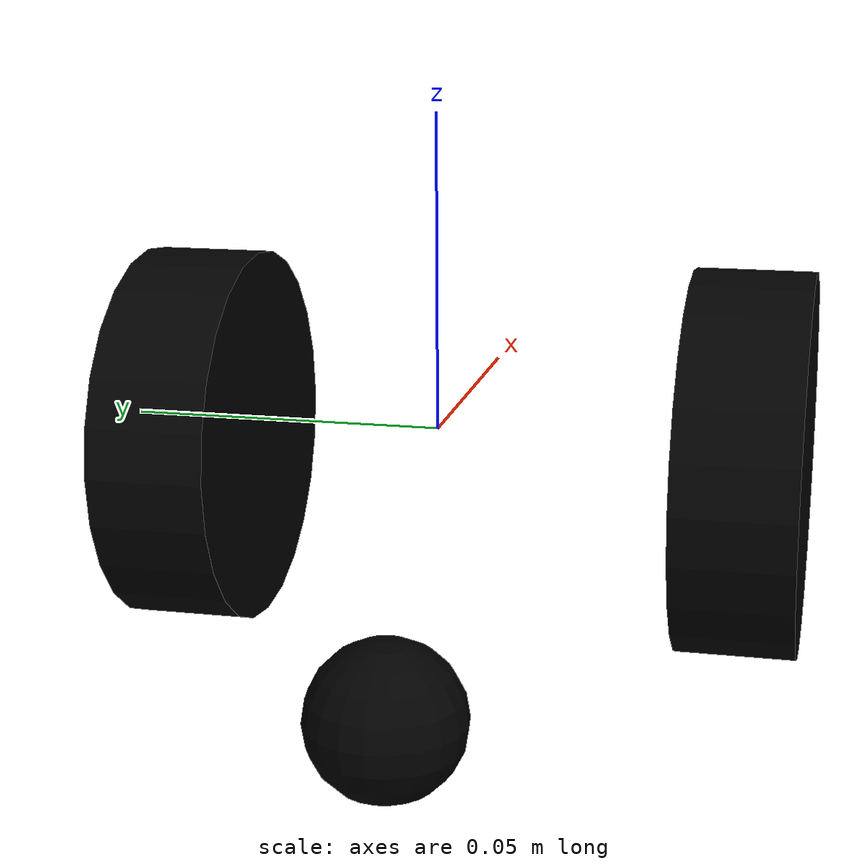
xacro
<?xml version="1.0"?>
<robot name="differential_robot" xmlns:xacro="http://www.ros.org/wiki/xacro">
  <!-- Parámetros básicos -->
  <xacro:property name="wheel_radius" value="0.0325"/>
  <xacro:property name="wheel_separation" value="0.095"/>

  <!-- Link principal (chasis) -->
  <link name="base_link">
    <inertial>
      <origin xyz="0 0 0" rpy="0 0 0"/>
      <mass value="5.0"/>
      <inertia ixx="0.1" ixy="0.0" ixz="0.0" iyy="0.1" iyz="0.0" izz="0.1"/>
    </inertial>
    <visual>
      <origin xyz="0 0 0" rpy="1.57 0 1.57"/>
      <geometry>
        <mesh filename="file:///home/hualde/misCosas/ros2_ws/src/robot_gazebo/meshes/base_link.stl" scale="0.0008 0.0008 0.0008"/>
      </geometry>
      <material name="gray">
        <color rgba="0.5 0.5 0.5 1"/>
      </material>
    </visual>
    <collision>
      <origin xyz="0 0 0" rpy="1.57 0 1.57"/>
      <geometry>
        <mesh filename="file:///home/hualde/misCosas/ros2_ws/src/robot_gazebo/meshes/base_link.stl" scale="0.0008 0.0008 0.0008"/>
      </geometry>
    </collision>
  </link>

  <!-- Ruedas motrices (en negro) -->
  <link name="wheel_left_link">
    <inertial>
      <origin xyz="0 0 0" rpy="0 0 0"/>
      <mass value="1.0"/>
      <inertia ixx="0.01" ixy="0.0" ixz="0.0" iyy="0.01" iyz="0.0" izz="0.01"/>
    </inertial>
    <visual>
      <origin xyz="0 0 0" rpy="-1.5708 0 0"/>
      <geometry>
        <cylinder length="0.02" radius="${wheel_radius}"/>
      </geometry>
      <material name="black">
        <color rgba="0 0 0 1"/>
      </material>
    </visual>
    <collision>
      <origin xyz="0 0 0" rpy="-1.5708 0 0"/>
      <geometry>
        <cylinder length="0.02" radius="${wheel_radius}"/>
      </geometry>
    </collision>
  </link>

  <link name="wheel_right_link">
    <inertial>
      <origin xyz="0 0 0" rpy="0 0 0"/>
      <mass value="1.0"/>
      <inertia ixx="0.01" ixy="0.0" ixz="0.0" iyy="0.01" iyz="0.0" izz="0.01"/>
    </inertial>
    <visual>
      <origin xyz="0 0 0" rpy="-1.5708 0 0"/>
      <geometry>
        <cylinder length="0.02" radius="${wheel_radius}"/>
      </geometry>
      <material name="black">
        <color rgba="0 0 0 1"/>
      </material>
    </visual>
    <collision>
      <origin xyz="0 0 0" rpy="-1.5708 0 0"/>
      <geometry>
        <cylinder length="0.02" radius="${wheel_radius}"/>
      </geometry>
    </collision>
  </link>

  <!-- Caster de bola (en negro) -->
  <!-- 1) Montaje fijo -->
  <link name="caster_mount_link">
    <inertial>
      <origin xyz="0 0 0" rpy="0 0 0"/>
      <mass value="0.1"/>
      <inertia ixx="0.001" ixy="0.0" ixz="0.0" iyy="0.001" iyz="0.0" izz="0.001"/>
    </inertial>
  </link>

  <joint name="caster_mount_joint" type="fixed">
    <parent link="base_link"/>
    <child link="caster_mount_link"/>
    <origin xyz="-0.035 0 -0.035" rpy="0 0 0"/>
  </joint>

  <!-- 2) Eje de rotación roll (X) - AHORA CON INERCIA -->
  <link name="caster_roll_link">
    <inertial>
      <origin xyz="0 0 0" rpy="0 0 0"/>
      <mass value="0.05"/>
      <inertia ixx="0.0001" ixy="0.0" ixz="0.0" iyy="0.0001" iyz="0.0" izz="0.0001"/>
    </inertial>
  </link>

  <joint name="caster_roll_joint" type="continuous">
    <parent link="caster_mount_link"/>
    <child link="caster_roll_link"/>
    <origin xyz="0 0 0" rpy="0 0 0"/>
    <axis xyz="1 0 0"/>
  </joint>

  <!-- 3) Eje de rotación pitch (Y) con la bola -->
  <link name="caster_ball_link">
    <inertial>
      <origin xyz="0 0 0" rpy="0 0 0"/>
      <mass value="0.1"/>
      <inertia ixx="0.0001" ixy="0.0" ixz="0.0" iyy="0.0001" iyz="0.0" izz="0.0001"/>
    </inertial>
    <visual>
      <origin xyz="0 0 0" rpy="0 0 0"/>
      <geometry>
        <sphere radius="0.0125"/>
      </geometry>
      <material name="black">
        <color rgba="0 0 0 1"/>
      </material>
    </visual>
    <collision>
      <origin xyz="0 0 0" rpy="0 0 0"/>
      <geometry>
        <sphere radius="0.0125"/>
      </geometry>
    </collision>
  </link>

  <joint name="caster_pitch_joint" type="continuous">
    <parent link="caster_roll_link"/>
    <child link="caster_ball_link"/>
    <origin xyz="0 0 0" rpy="0 0 0"/>
    <axis xyz="0 1 0"/>
  </joint>

  <!-- Joints de ruedas motrices -->
  <joint name="joint_wheel_left" type="continuous">
    <parent link="base_link"/>
    <child link="wheel_left_link"/>
    <origin xyz="0.025 ${-wheel_separation/2} -0.01" rpy="0 0 0"/>
    <axis xyz="0 1 0"/>
  </joint>

  <joint name="joint_wheel_right" type="continuous">
    <parent link="base_link"/>
    <child link="wheel_right_link"/>
    <origin xyz="0.025 ${wheel_separation/2} -0.01" rpy="0 0 0"/>
    <axis xyz="0 1 0"/>
  </joint>

</robot>
